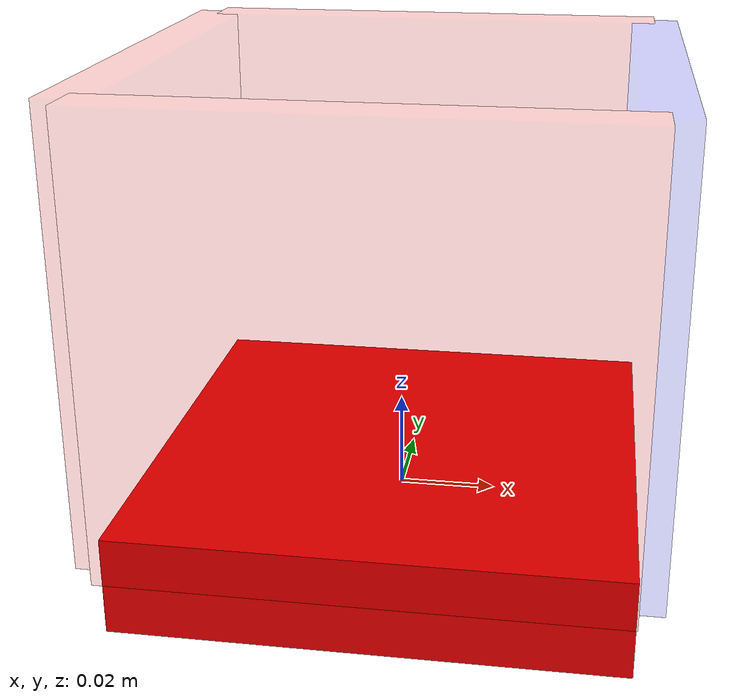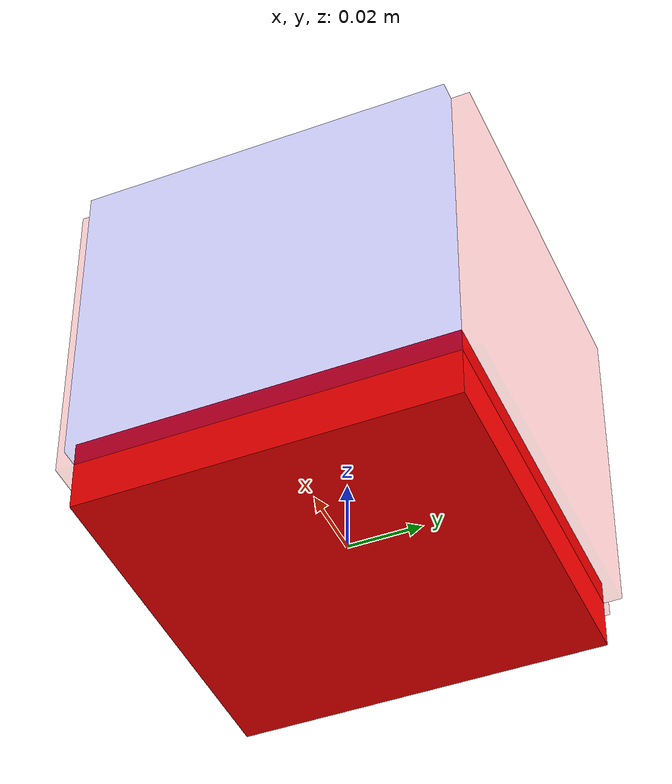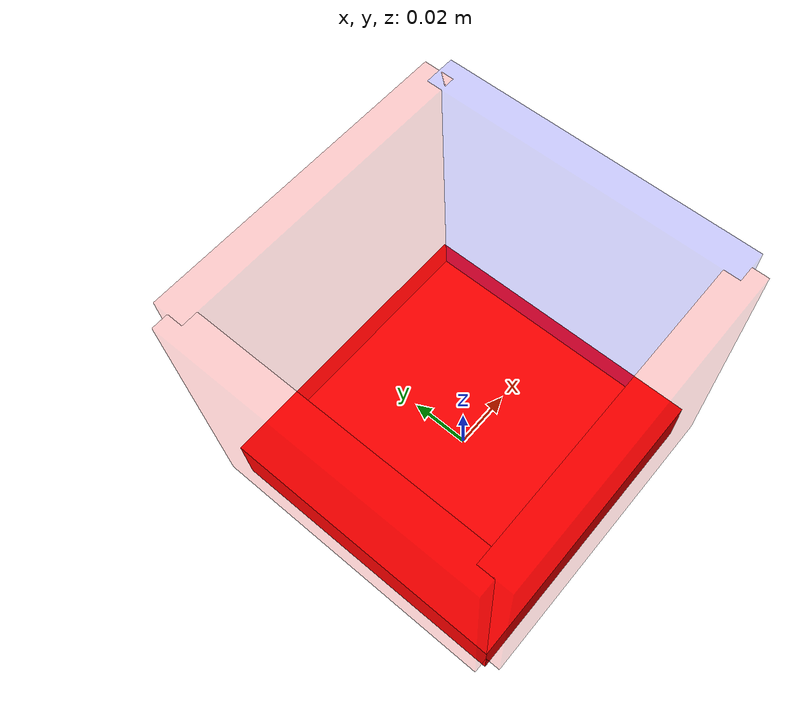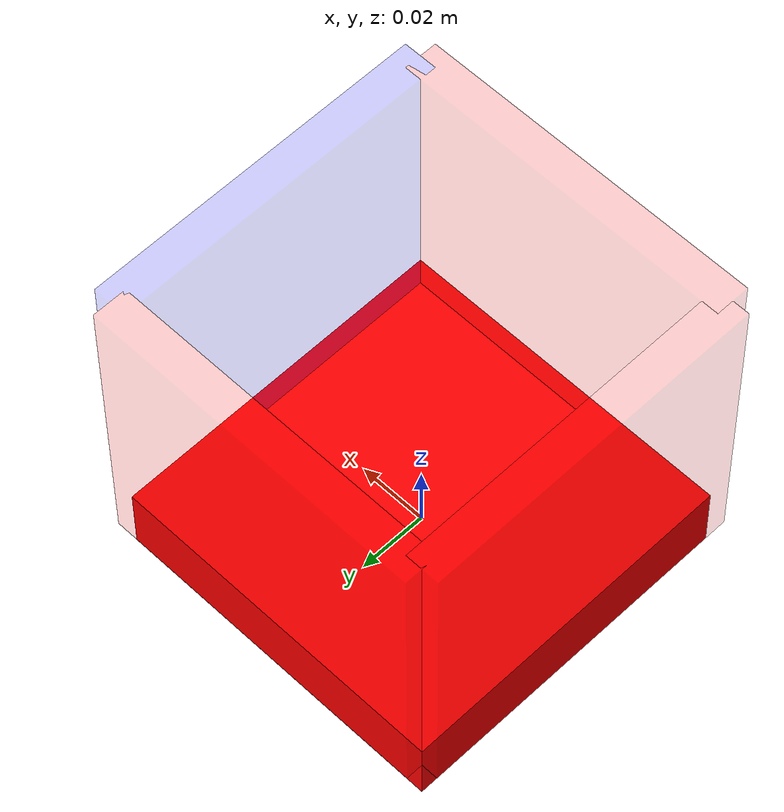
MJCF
<mujoco model="target_box">
    <worldbody>
        <body name="target_box" pos="0.0 0.0 0.0" quat="1 0 0 0">
            <geom pos="0 0 0" size="0.05 0.05 0.01" rgba="1 0 0 1.0" type="box" mass="0.01" friction="0.3 0.001 0.0001" priority="1" contype="2" conaffinity="0"/>
            <geom pos="0.05 0 0.0485" size="0.005 0.05 0.045" rgba="0 0 1 0.2" type="box" mass="0.01" contype="0" conaffinity="0"/>
            <geom pos="0 0.05 0.0485" size="0.05 0.005 0.045" rgba="1 0 0 0.2" type="box" mass="0.01" contype="0" conaffinity="0"/>
            <geom pos="-0.05 0 0.0485" size="0.005 0.05 0.045" rgba="1 0 0 0.2" type="box" mass="0.01" contype="0" conaffinity="0"/>
            <geom pos="0 -0.05 0.0485" size="0.05 0.005 0.045" rgba="1 0 0 0.2" type="box" mass="0.01" contype="0" conaffinity="0"/>
        </body>
    </worldbody>
</mujoco>
